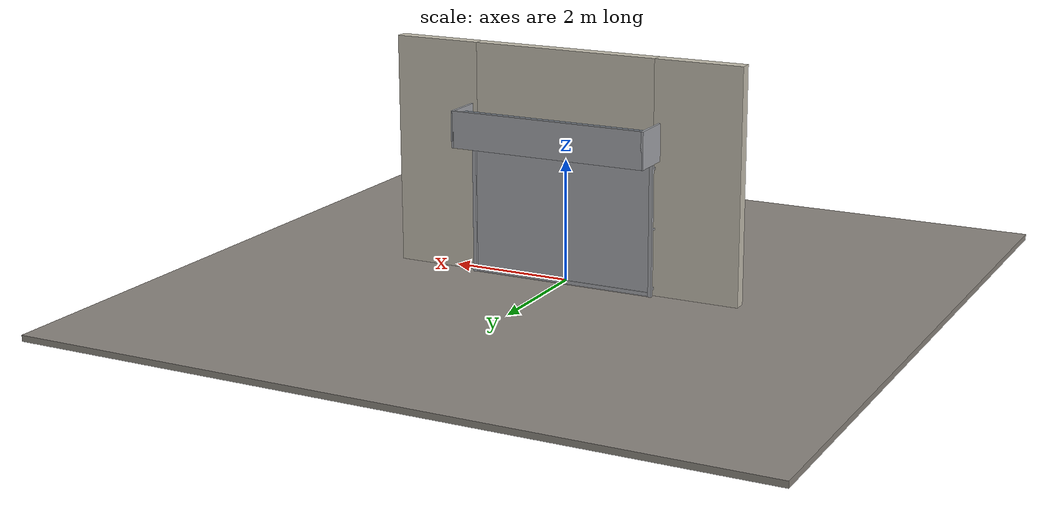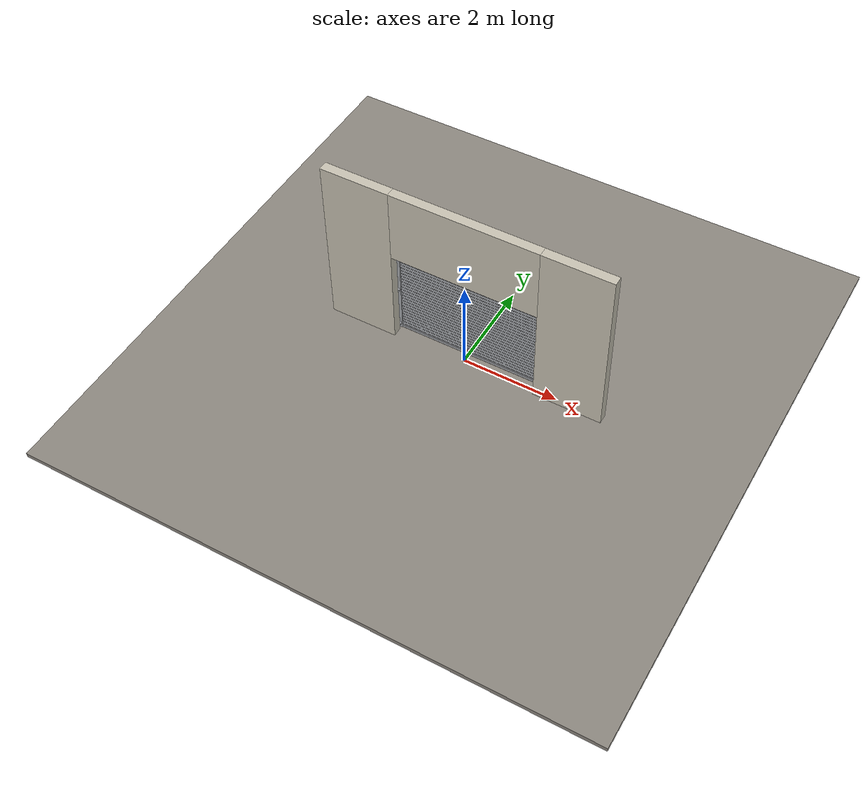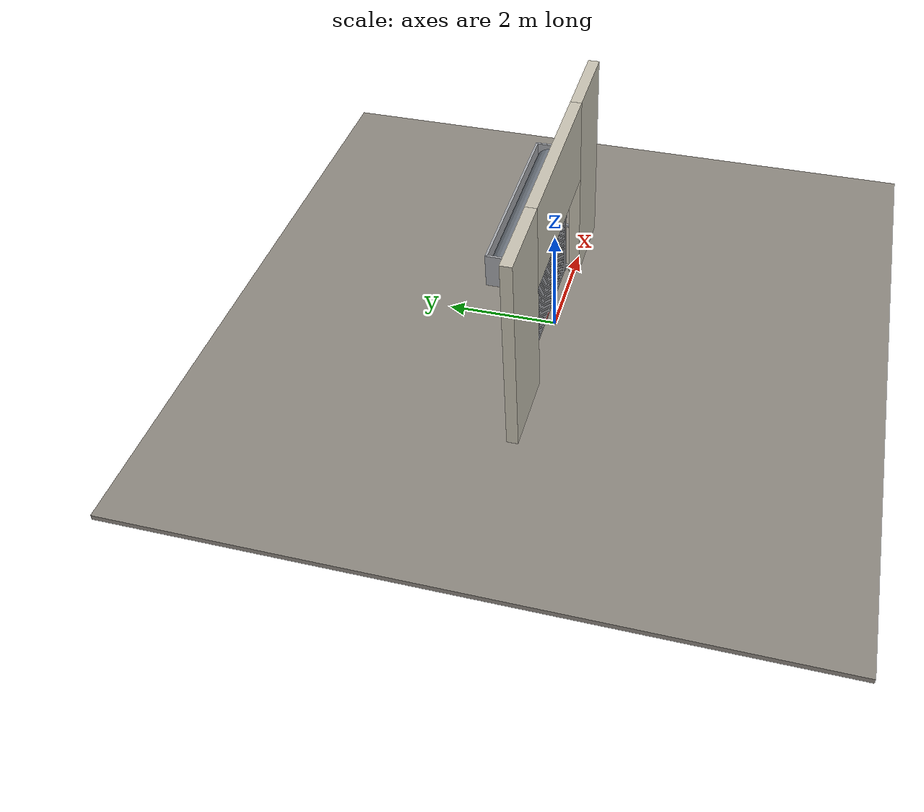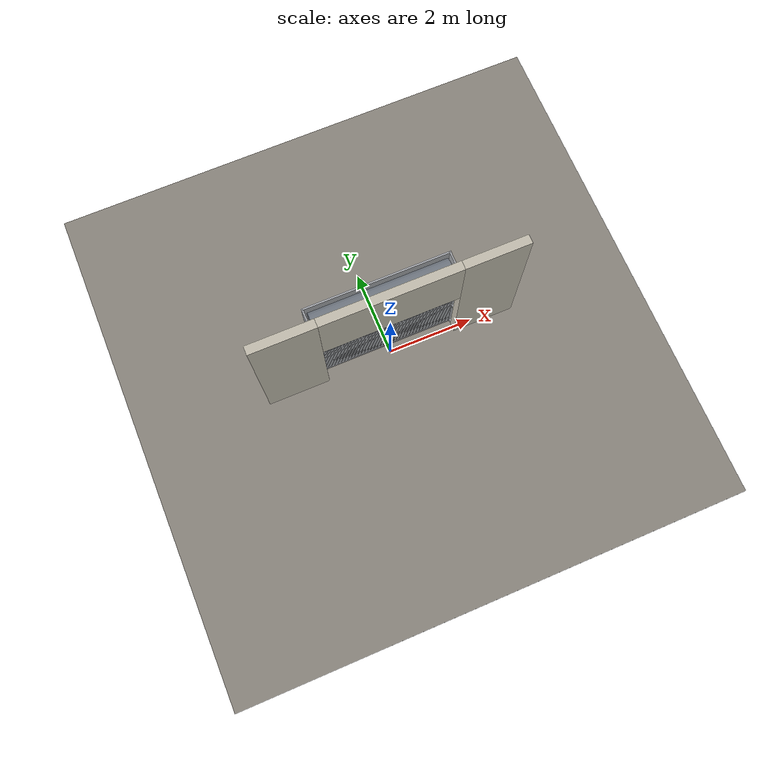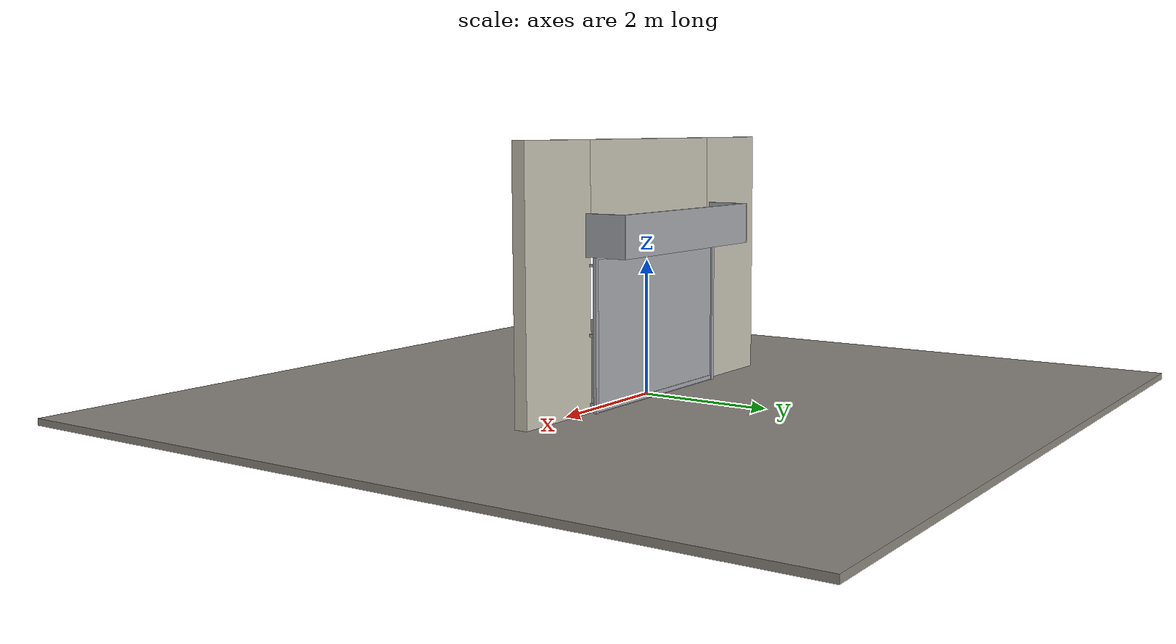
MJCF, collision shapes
<?xml version="1.0" ?>
<mujoco model="db0371_rollup_full">
  <compiler angle="radian" meshdir="../../hardware" texturedir="../../textures" autolimits="true" inertiafromgeom="false"/>
  <option timestep="0.002" integrator="implicitfast" cone="elliptic" impratio="10" noslip_iterations="3">
    <flag multiccd="enable"/>
  </option>
  <size memory="16M"/>
  <default>
    <geom condim="4" solref="0.005 1" solimp="0.95 0.99 0.001"/>
    <joint solreflimit="0.005 1" solimplimit="0.95 0.99 0.001"/>
    <tendon solreflimit="0.005 1"/>
    <equality solref="0.002 1"/>
  </default>
  <visual>
    <headlight ambient="0.4 0.4 0.4" diffuse="0.7 0.7 0.7" specular="0.2 0.2 0.2"/>
    <quality shadowsize="4096"/>
    <map znear="0.01" zfar="60"/>
  </visual>
  <asset>
    <mesh name="pull_bdc5e965ab" file="pull_bdc5e965ab.obj"/>
    <material name="mat_floor" rgba="0.55 0.53 0.5 1" specular="0.2" shininess="0.15" reflectance="0"/>
    <material name="mat_wall" rgba="0.78 0.76 0.7 1" specular="0.2" shininess="0.1" reflectance="0"/>
    <material name="mat_frame" rgba="0.45 0.48 0.52 1" specular="0.32" shininess="0.6" reflectance="0.08"/>
    <material name="mat_track" rgba="0.65 0.66 0.68 1" specular="0.74" shininess="0.5" reflectance="0.36"/>
    <material name="mat_curtain" rgba="0.65 0.66 0.68 1" specular="0.74" shininess="0.5" reflectance="0.36"/>
    <material name="mat_slat_line" rgba="0.25 0.25 0.25 1" specular="0.2" shininess="0.3" reflectance="0"/>
    <material name="mat_astragal" rgba="0.09 0.09 0.1 1" specular="0.2" shininess="0.1" reflectance="0"/>
    <material name="mat_op_black_matte_metal" rgba="0.05 0.05 0.05 1" specular="0.38" shininess="0.3" reflectance="0.12"/>
    <texture name="skybox" type="skybox" builtin="gradient" rgb1="0.6 0.7 0.85" rgb2="0.9 0.92 0.95" width="256" height="256"/>
  </asset>
  <worldbody>
    <light name="sun" pos="1.5 -2.5 4" dir="-0.3 0.5 -0.8" directional="true" diffuse="0.8 0.8 0.8" specular="0.3 0.3 0.3" castshadow="true"/>
    <light name="fill" pos="-1.5 2.5 3" dir="0.3 -0.5 -0.7" directional="true" diffuse="0.35 0.35 0.4" castshadow="false"/>
    <camera name="robot_view" pos="0 -3.53125 2.07875" xyaxes="1 0 0 0 0.26963 0.962964" fovy="52"/>
    <camera name="far_view" pos="0 3.53125 2.07875" xyaxes="-1 0 0 0 -0.26963 0.962964" fovy="52"/>
    <camera name="iso" pos="2.68375 -2.96625 2.64375" xyaxes="0.741536 0.670913 0 -0.242917 0.268487 0.932151" fovy="46"/>
    <camera name="detail_handle" pos="0.25 -0.9665 0.51" xyaxes="0.975133 0.221621 0 -0.065674 0.288965 0.955084" fovy="38"/>
    <geom name="floor" type="box" size="6 6 0.05" pos="0 0 -0.05" material="mat_floor" group="0" contype="1" conaffinity="1" friction="0.8 0.005 0.0001" density="2400"/>
    <geom name="wall_left" type="box" size="0.725 0.1 1.89" pos="-2.275 0 1.89" material="mat_wall" group="0" contype="1" conaffinity="1" friction="0.6 0.005 0.0001" density="800"/>
    <geom name="wall_right" type="box" size="0.725 0.1 1.89" pos="2.275 0 1.89" material="mat_wall" group="0" contype="1" conaffinity="1" friction="0.6 0.005 0.0001" density="800"/>
    <geom name="wall_header" type="box" size="1.55 0.1 0.8" pos="0 0 2.98" material="mat_wall" group="0" contype="1" conaffinity="1" friction="0.6 0.005 0.0001" density="800"/>
    <geom name="guide_l" type="box" size="0.03 0.025 1.09" pos="-1.56 0.185 1.09" material="mat_track" group="0" contype="1" conaffinity="1" friction="0.6 0.005 0.0001" density="7850"/>
    <geom name="guide_r" type="box" size="0.03 0.025 1.09" pos="1.56 0.185 1.09" material="mat_track" group="0" contype="1" conaffinity="1" friction="0.6 0.005 0.0001" density="7850"/>
    <geom name="guide_bracket_l_0" type="box" size="0.028 0.034 0.02" pos="-1.56 0.13 0.12" material="mat_track" group="1" contype="0" conaffinity="0" density="7850"/>
    <geom name="guide_bracket_l_1" type="box" size="0.028 0.034 0.02" pos="-1.56 0.13 1.09" material="mat_track" group="1" contype="0" conaffinity="0" density="7850"/>
    <geom name="guide_bracket_l_2" type="box" size="0.028 0.034 0.02" pos="-1.56 0.13 2.06" material="mat_track" group="1" contype="0" conaffinity="0" density="7850"/>
    <geom name="guide_bracket_r_0" type="box" size="0.028 0.034 0.02" pos="1.56 0.13 0.12" material="mat_track" group="1" contype="0" conaffinity="0" density="7850"/>
    <geom name="guide_bracket_r_1" type="box" size="0.028 0.034 0.02" pos="1.56 0.13 1.09" material="mat_track" group="1" contype="0" conaffinity="0" density="7850"/>
    <geom name="guide_bracket_r_2" type="box" size="0.028 0.034 0.02" pos="1.56 0.13 2.06" material="mat_track" group="1" contype="0" conaffinity="0" density="7850"/>
    <geom name="coil_drum" type="cylinder" size="0.25 1.575" pos="0 0.463 2.48" quat="0.707107 0 0.707107 0" material="mat_frame" group="1" contype="0" conaffinity="0" density="300"/>
    <geom name="coil_shaft" type="cylinder" size="0.022 1.655" pos="0 0.463 2.48" quat="0.707107 0 0.707107 0" material="mat_track" group="1" contype="0" conaffinity="0" density="7850"/>
    <geom name="hood_front" type="box" size="1.645 0.02 0.3" pos="0 0.725 2.48" material="mat_track" group="1" contype="0" conaffinity="0" density="7850"/>
    <geom name="hood_end_l" type="box" size="0.02 0.3225 0.3" pos="-1.645 0.4225 2.48" material="mat_track" group="1" contype="0" conaffinity="0" density="7850"/>
    <geom name="hood_end_r" type="box" size="0.02 0.3225 0.3" pos="1.645 0.4225 2.48" material="mat_track" group="1" contype="0" conaffinity="0" density="7850"/>
    <site name="approach_point" pos="0 -2 0" quat="1 0 0 0" size="0.05" rgba="0.2 0.9 0.2 0.5" group="4"/>
    <site name="goal_point" pos="0 2 0" quat="1 0 0 0" size="0.05" rgba="0.2 0.9 0.2 0.5" group="4"/>
    <site name="door_plane_center" pos="0 0 1.09" quat="1 0 0 0" size="0.02" rgba="0.2 0.9 0.2 0.5" group="4"/>
    <body name="curtain" pos="0 0 0">
      <inertial pos="0 0.184582 0.862793" mass="40.79802" quat="0 0 -0.706888 0.707326" diaginertia="19.343375876 31.320133114 50.66047625"/>
      <joint name="curtain_slide" type="slide" axis="0 0 1" limited="true" range="0 2.08" damping="4.039901" frictionloss="41.609558" stiffness="43.293957" springref="6.933333" armature="0.5"/>
      <geom name="curtain_slab" type="box" size="1.525 0.0015 1.065" pos="0 0.185 1.075" material="mat_curtain" group="0" contype="1" conaffinity="1" friction="0.42 0.005 0.0001" density="1"/>
      <geom name="slat_line_1" type="box" size="1.525 0.001 0.003" pos="0 0.1825 0.086071" material="mat_slat_line" group="1" contype="0" conaffinity="0" density="1"/>
      <geom name="slat_line_2" type="box" size="1.525 0.001 0.003" pos="0 0.1825 0.162143" material="mat_slat_line" group="1" contype="0" conaffinity="0" density="1"/>
      <geom name="slat_line_3" type="box" size="1.525 0.001 0.003" pos="0 0.1825 0.238214" material="mat_slat_line" group="1" contype="0" conaffinity="0" density="1"/>
      <geom name="slat_line_4" type="box" size="1.525 0.001 0.003" pos="0 0.1825 0.314286" material="mat_slat_line" group="1" contype="0" conaffinity="0" density="1"/>
      <geom name="slat_line_5" type="box" size="1.525 0.001 0.003" pos="0 0.1825 0.390357" material="mat_slat_line" group="1" contype="0" conaffinity="0" density="1"/>
      <geom name="slat_line_6" type="box" size="1.525 0.001 0.003" pos="0 0.1825 0.466429" material="mat_slat_line" group="1" contype="0" conaffinity="0" density="1"/>
      <geom name="slat_line_7" type="box" size="1.525 0.001 0.003" pos="0 0.1825 0.5425" material="mat_slat_line" group="1" contype="0" conaffinity="0" density="1"/>
      <geom name="slat_line_8" type="box" size="1.525 0.001 0.003" pos="0 0.1825 0.618571" material="mat_slat_line" group="1" contype="0" conaffinity="0" density="1"/>
      <geom name="slat_line_9" type="box" size="1.525 0.001 0.003" pos="0 0.1825 0.694643" material="mat_slat_line" group="1" contype="0" conaffinity="0" density="1"/>
      <geom name="slat_line_10" type="box" size="1.525 0.001 0.003" pos="0 0.1825 0.770714" material="mat_slat_line" group="1" contype="0" conaffinity="0" density="1"/>
      <geom name="slat_line_11" type="box" size="1.525 0.001 0.003" pos="0 0.1825 0.846786" material="mat_slat_line" group="1" contype="0" conaffinity="0" density="1"/>
      <geom name="slat_line_12" type="box" size="1.525 0.001 0.003" pos="0 0.1825 0.922857" material="mat_slat_line" group="1" contype="0" conaffinity="0" density="1"/>
      <geom name="slat_line_13" type="box" size="1.525 0.001 0.003" pos="0 0.1825 0.998929" material="mat_slat_line" group="1" contype="0" conaffinity="0" density="1"/>
      <geom name="slat_line_14" type="box" size="1.525 0.001 0.003" pos="0 0.1825 1.075" material="mat_slat_line" group="1" contype="0" conaffinity="0" density="1"/>
      <geom name="slat_line_15" type="box" size="1.525 0.001 0.003" pos="0 0.1825 1.151071" material="mat_slat_line" group="1" contype="0" conaffinity="0" density="1"/>
      <geom name="slat_line_16" type="box" size="1.525 0.001 0.003" pos="0 0.1825 1.227143" material="mat_slat_line" group="1" contype="0" conaffinity="0" density="1"/>
      <geom name="slat_line_17" type="box" size="1.525 0.001 0.003" pos="0 0.1825 1.303214" material="mat_slat_line" group="1" contype="0" conaffinity="0" density="1"/>
      <geom name="slat_line_18" type="box" size="1.525 0.001 0.003" pos="0 0.1825 1.379286" material="mat_slat_line" group="1" contype="0" conaffinity="0" density="1"/>
      <geom name="slat_line_19" type="box" size="1.525 0.001 0.003" pos="0 0.1825 1.455357" material="mat_slat_line" group="1" contype="0" conaffinity="0" density="1"/>
      <geom name="slat_line_20" type="box" size="1.525 0.001 0.003" pos="0 0.1825 1.531429" material="mat_slat_line" group="1" contype="0" conaffinity="0" density="1"/>
      <geom name="slat_line_21" type="box" size="1.525 0.001 0.003" pos="0 0.1825 1.6075" material="mat_slat_line" group="1" contype="0" conaffinity="0" density="1"/>
      <geom name="slat_line_22" type="box" size="1.525 0.001 0.003" pos="0 0.1825 1.683571" material="mat_slat_line" group="1" contype="0" conaffinity="0" density="1"/>
      <geom name="slat_line_23" type="box" size="1.525 0.001 0.003" pos="0 0.1825 1.759643" material="mat_slat_line" group="1" contype="0" conaffinity="0" density="1"/>
      <geom name="slat_line_24" type="box" size="1.525 0.001 0.003" pos="0 0.1825 1.835714" material="mat_slat_line" group="1" contype="0" conaffinity="0" density="1"/>
      <geom name="slat_line_25" type="box" size="1.525 0.001 0.003" pos="0 0.1825 1.911786" material="mat_slat_line" group="1" contype="0" conaffinity="0" density="1"/>
      <geom name="slat_line_26" type="box" size="1.525 0.001 0.003" pos="0 0.1825 1.987857" material="mat_slat_line" group="1" contype="0" conaffinity="0" density="1"/>
      <geom name="slat_line_27" type="box" size="1.525 0.001 0.003" pos="0 0.1825 2.063929" material="mat_slat_line" group="1" contype="0" conaffinity="0" density="1"/>
      <geom name="bottom_bar" type="box" size="1.525 0.0165 0.03" pos="0 0.185 0.042" material="mat_track" group="0" contype="1" conaffinity="1" friction="0.6 0.005 0.0001" density="7850"/>
      <geom name="bottom_astragal" type="box" size="1.525 0.0115 0.006" pos="0 0.185 0.006" material="mat_astragal" group="0" contype="1" conaffinity="1" friction="0.6 0.005 0.0001" density="1100"/>
      <geom name="lift_handle_n" type="mesh" mesh="pull_bdc5e965ab" pos="0 0.1835 0.16" quat="0.707107 0.707107 0 0" material="mat_op_black_matte_metal" group="1" contype="0" conaffinity="0" density="3000"/>
      <geom name="lift_handle_col_n" type="box" size="0.1 0.006 0.015" pos="0 0.1335 0.16" material="mat_op_black_matte_metal" group="3" contype="1" conaffinity="1" rgba="0.8 0.3 0.3 0.25" friction="0.6 0.005 0.0001" density="3000"/>
      <site name="lift_handle_grip_n" pos="0 0.1335 0.16" quat="1 0 0 0" size="0.012" rgba="0.2 0.9 0.2 0.5" group="4"/>
    </body>
  </worldbody>
  <sensor>
    <jointpos name="curtain_slide_pos" joint="curtain_slide"/>
    <jointvel name="curtain_slide_vel" joint="curtain_slide"/>
  </sensor>
</mujoco>
